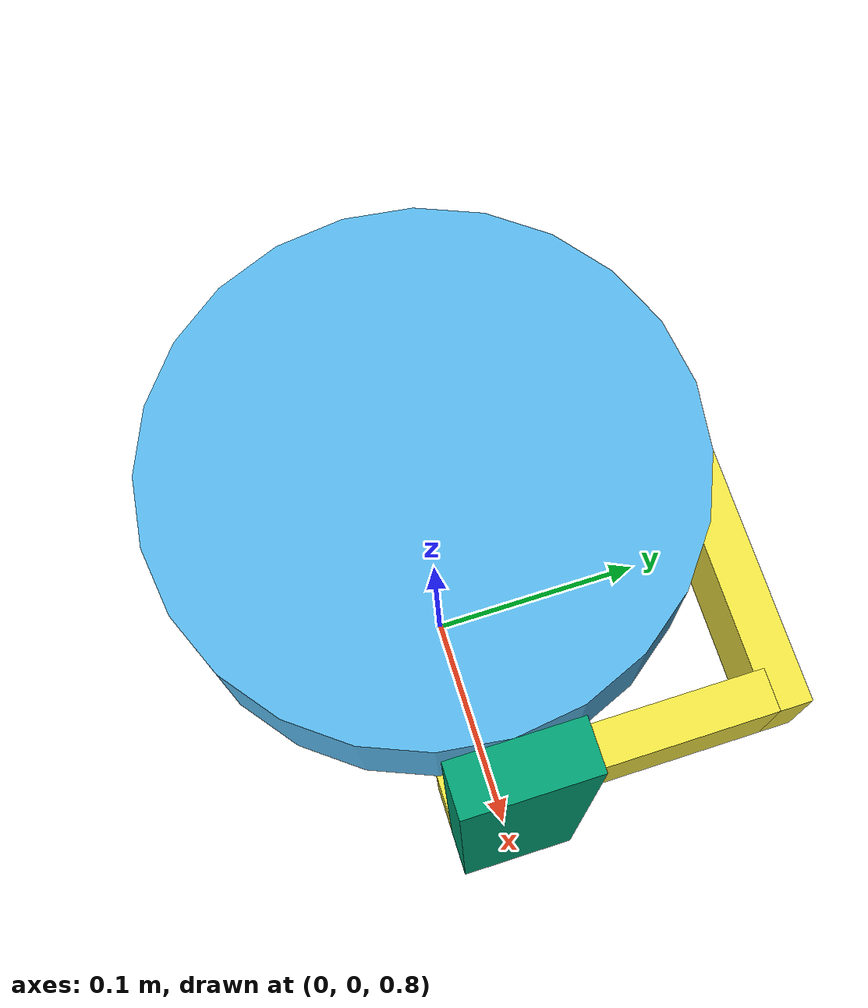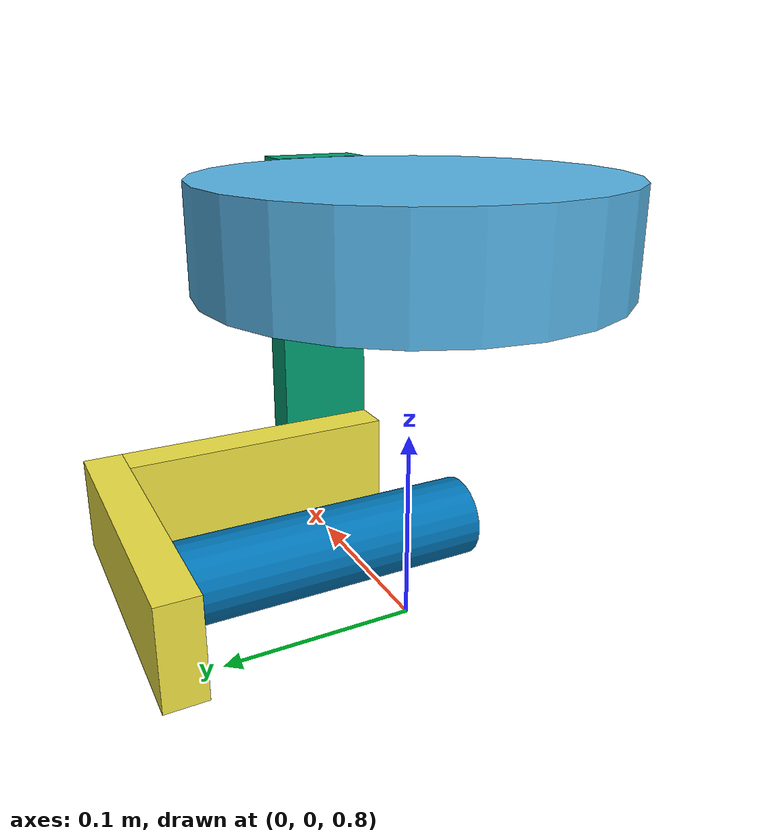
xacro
<?xml version="1.0"?>
<robot xmlns:xacro="http://www.ros.org/wiki/xacro" name="model">

	<xacro:property name = "base_mass" value = "1.0"/>
	<xacro:property name = "base_height" value = "0.05"/>
	<xacro:property name = "base_radius" value = "0.1"/>

	<xacro:property name = "mount_height" value = "0.2"/>
	<xacro:property name = "mount_length" value = "0.05"/>
	<xacro:property name = "mount_width" value = "0.02"/>
	<xacro:property name = "mount_mass" value = "0.5"/>

	<xacro:property name = "elbow_mass" value = "0.5"/>
	<xacro:property name = "elbow_width" value = "0.02"/>
	<xacro:property name = "elbow_height" value = "0.05"/>
	<xacro:property name = "elbow_length" value = "0.15"/>

	<xacro:property name = "scope_mass" value = "0.1"/>
	<xacro:property name = "scope_length" value = "0.15"/>
	<xacro:property name = "scope_radius" value = "0.02"/>

	<link name = "world"/>
	<link name = "base_link">
		<inertial>
			<mass value = "${base_mass}"/>
			<origin xyz = "0 0 0" rpy = "0 0 0"/>
			<inertia ixx = "0.0"
				 	 ixy = "0.0"
				 	 ixz = "0.0"
				  	 iyy = "0.0"
				 	 iyz = "0.0"
				  	 izz = "0.0"/>
		</inertial>

		<visual name = "base_link_visual">
			<origin xyz = "0 0 0" rpy = "0 0 0" />
			<geometry>
				<cylinder length = "${base_height}" radius = "${base_radius}"/>
			</geometry>
		</visual>

		<collision name = "base_link_collision">
			<origin xyz = "0 0 0" rpy = "0 0 0"/>
			<geometry>
				<cylinder length = "${base_height}" radius = "${base_radius}"/>
			</geometry>
		</collision>
	</link>

	<link name = "mount_link">
		<inertial>
			<mass value="${mount_mass}"/>
				<origin xyz = "${base_radius + mount_width/2} 0 ${-mount_height/2+base_height/2}" />
			<inertia ixx = "0.0"
					 ixy = "0.0"
					 ixz = "0.0"
				     iyy = "0.0"
					 iyz = "0.0"
					 izz = "0.0"/>
		</inertial>

		<visual name = "mount_link_visual">
			<origin xyz = "${base_radius + mount_width/2} 0 ${-mount_height/2+base_height/2} "/>
			<geometry>
				<box size = "${mount_width} ${mount_length} ${mount_height}"/>
			</geometry>
		</visual>

		<collision name = "mount_link_collision">
			<origin xyz = "${base_radius + mount_width/2} 0 ${-mount_height/2+base_height/2}"/>
			<geometry>
				<box size = "${mount_width} ${mount_length} ${mount_height}"/>
			</geometry>
		</collision>
	</link>

	<link name = "elbow_link">
		<inertial>
			<mass value = "${elbow_mass}"/>
				<origin xyz = "${mount_length} 0 0 "/>
			<inertia ixx = "0.0"
					 ixy = "0.0"
					 ixz = "0.0"
					 iyy = "0.0"
					 iyz = "0.0"
					 izz = "0.0"/>
			</inertial>

		<visual name = "elbow_link_visual">
			<origin xyz = "${-mount_width/2} ${mount_length} 0" />
			<geometry>
				<box size = "${elbow_width} ${elbow_length} ${elbow_height}"/>
			</geometry>
		</visual>

		<visual name = "second_elbow_link_visual">
			<origin xyz = "${-0.5*elbow_length} ${elbow_length - elbow_width} 0" rpy = "0 0 ${-pi/2}"/>
			<geometry>
				<box size = "${elbow_width} ${elbow_length} ${elbow_height}"/>
			</geometry>
		</visual>

		<collision name = "elbow_link_collsion">
			<origin xyz = "${-mount_width/2} ${mount_length} 0" />
			<geometry>
				<box size = "${elbow_width} ${elbow_length} ${elbow_height}"/>
			</geometry>
		</collision>

		<collision name = "second_elbow_link_collision">
			<origin xyz = "${-0.5*elbow_length} ${elbow_length - elbow_width} 0" rpy = "0 0 ${-pi/2}"/>
			<geometry>
				<box size = "${elbow_width} ${elbow_length} ${elbow_height}"/>
			</geometry>
		</collision>

	</link>

	<link name = "scope_link">
		<inertial>
			<mass value = "${scope_mass}"/>
			<origin xyz = "${mount_length} 0 0 "/>
			<inertia ixx = "0.0"
					 ixy = "0.0"
					 ixz = "0.0"
					 iyy = "0.0"
					 iyz = "0.0"
					 izz = "0.0"/>
			</inertial>

		<visual name = "scope_link_visual">
			<origin xyz = "0 ${-scope_length/2} 0" rpy = "${pi/2} 0 0" />
			<geometry>
				<cylinder length = "${scope_length}" radius = "${scope_radius}"/>
			</geometry>
		</visual>

		<collision name = "scope_link_collision">
			<origin xyz = "0 ${-scope_length/2} 0" rpy = "${pi/2} 0 0" />
			<geometry>
				<cylinder length = "${scope_length}" radius = "${scope_radius}"/>
			</geometry>
		</collision>
	</link>

	<joint name="fixed_link" type="fixed">
		<parent link="world"/>
		<child link="base_link"/>
		<origin xyz="0 0 1"/>
	</joint>

	<joint name = "roll_joint" type = "revolute">
		<parent link = "elbow_link" />
		<child link = "scope_link" />
		<origin xyz = "${-base_radius} ${elbow_length-elbow_width-mount_width/2} 0" rpy="0 0 0"/>
		<axis xyz = "0 -1 0" />
		<limit lower="${-pi/4}" upper="${pi/4}" effort="1000.0" velocity="10.0"/>
	</joint>

	<joint name = "pitch_joint" type = "revolute">
		<parent link = "mount_link" />
		<child link = "elbow_link" />
		<origin xyz = "${base_radius} 0 ${-mount_height+elbow_height/2+base_height/2}" rpy="0 0 0"/>
		<axis xyz = "1 0 0" />
		<limit lower="${-pi/4}" upper="${pi/4}" effort="1000.0" velocity="10.0"/>
	</joint>

	<joint name = "yaw_joint" type = "continuous">
		<parent link = "base_link" />
		<child link = "mount_link" />
		<axis xyz = "0 0 1" />
	</joint>

	<transmission name="pitch_transmission">
		<type>transmission_interface/SimpleTransmission</type>

		<joint name="pitch_joint">
			<hardwareInterface>hardware_interface/PositionJointInterface</hardwareInterface>
		</joint>

		<actuator name="pitch_motor">
			<hardwareInterface>hardware_interface/PositionJointInterface</hardwareInterface>
			<mechanicalReduction>1</mechanicalReduction>
		</actuator>
	</transmission>

	<transmission name="yaw_transmission">
		<type>transmission_interface/SimpleTransmission</type>

		<joint name="yaw_joint">
			<hardwareInterface>hardware_interface/PositionJointInterface</hardwareInterface>
		</joint>

		<actuator name="yaw_motor">
			<hardwareInterface>hardware_interface/PositionJointInterface</hardwareInterface>
			<mechanicalReduction>1</mechanicalReduction>
		</actuator>
	</transmission>

	<transmission name="roll_transmission">
		<type>transmission_interface/SimpleTransmission</type>

		<joint name="roll_joint">
			<hardwareInterface>hardware_interface/PositionJointInterface</hardwareInterface>
		</joint>

		<actuator name="roll_motor">
			<hardwareInterface>hardware_interface/PositionJointInterface</hardwareInterface>
			<mechanicalReduction>1</mechanicalReduction>
		</actuator>
	</transmission>

	<gazebo>
		<static>false</static>
		<plugin name = "gazebo_ros_control" filename = "libgazebo_ros_control.so">
			<robotNamespace>/model</robotNamespace>
		</plugin>
	</gazebo>

</robot>
